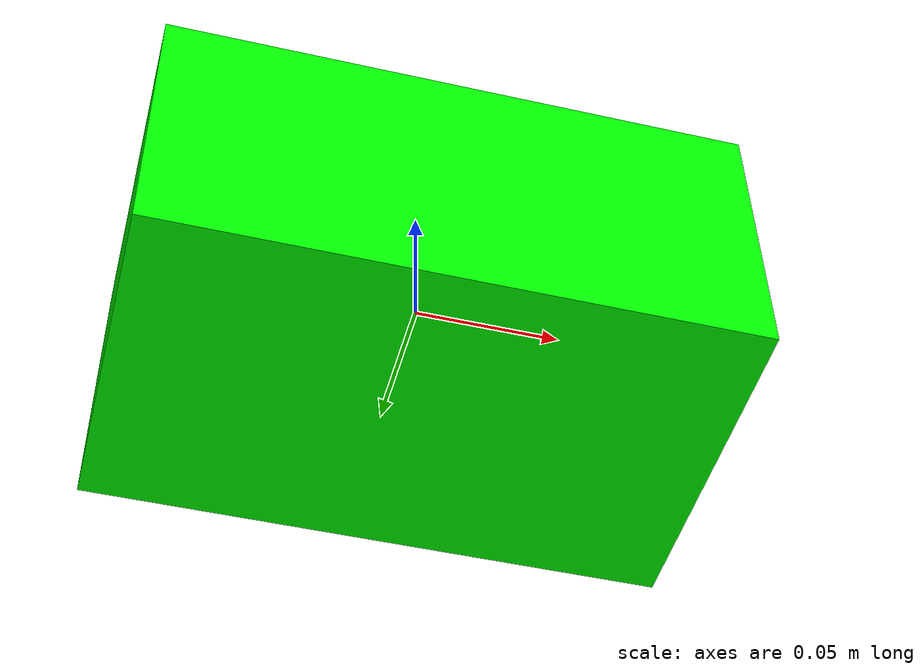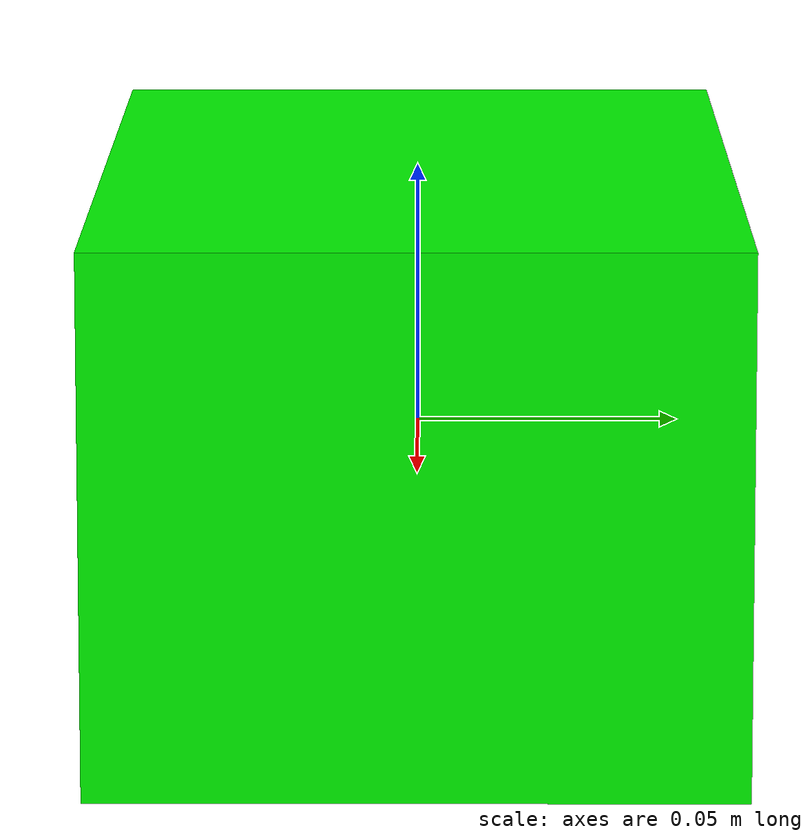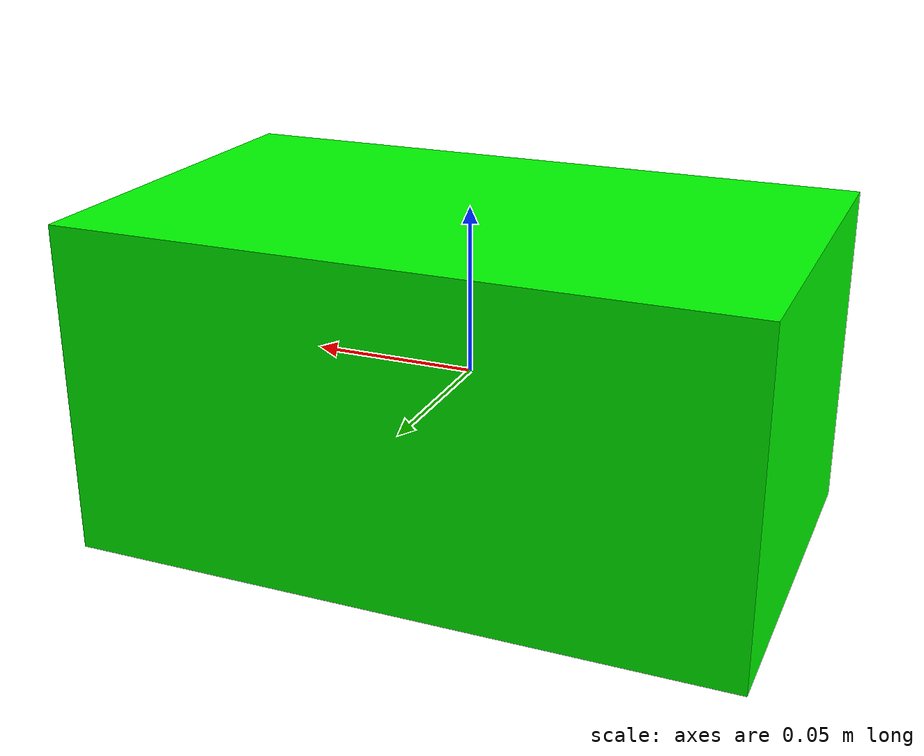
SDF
<?xml version="1.0" ?>
<sdf version="1.6">
  <model name="box_base_mid">
    <static>true</static>
    <link name="base_mid">
      <inertial>
        <mass>0.5</mass>
        <inertia>
          <ixx>0.002</ixx>
          <iyy>0.002</iyy>
          <izz>0.002</izz>
        </inertia>
      </inertial>
      <collision name="collision">
        <geometry>
          <box>
            <size>0.2 0.12 0.12</size>
          </box>
        </geometry>
        <surface>
          <contact>
            <ode/>
                <soft_cfm>0.00001</soft_cfm>
                <soft_erp>0.9</soft_erp>
                <kp>500000</kp>
                <kd>10</kd>
          </contact>
          <friction>
            <ode>
                <mu>2.0</mu>
                <mu2>2.0</mu2>
            </ode>
          </friction>
        </surface>
      </collision>
      <visual name="visual">
        <geometry>
          <box>
            <size>0.2 0.12 0.10</size>
          </box>
        </geometry>
        <material>
          <ambient>0 1 0 1</ambient>
        </material>
      </visual>
    </link>
  </model>
</sdf>
